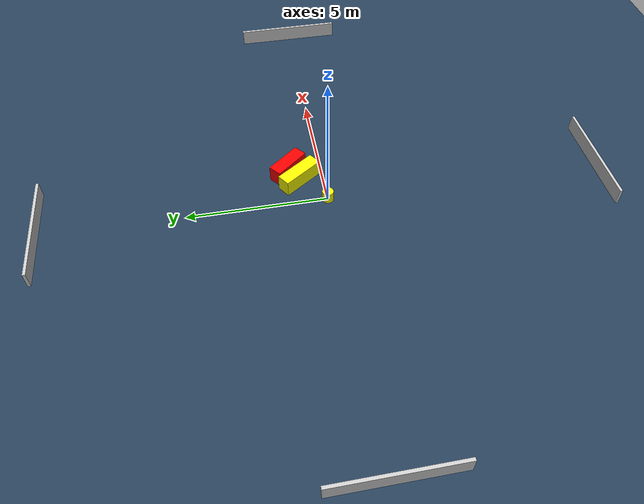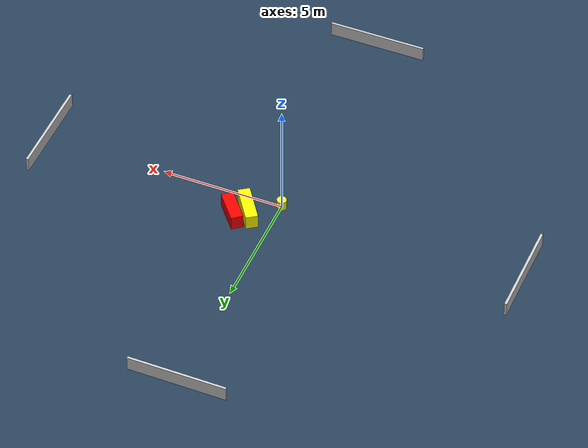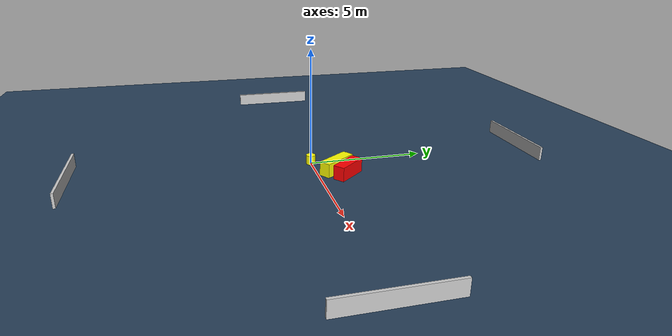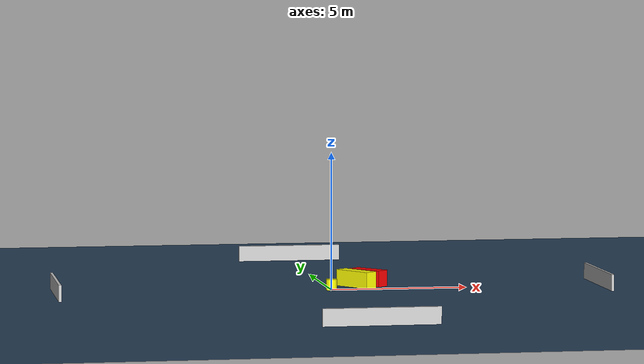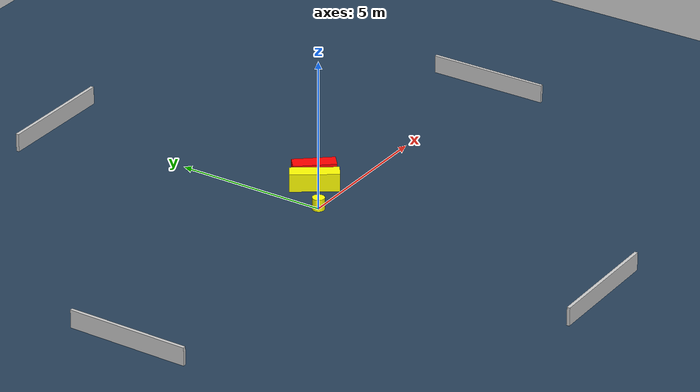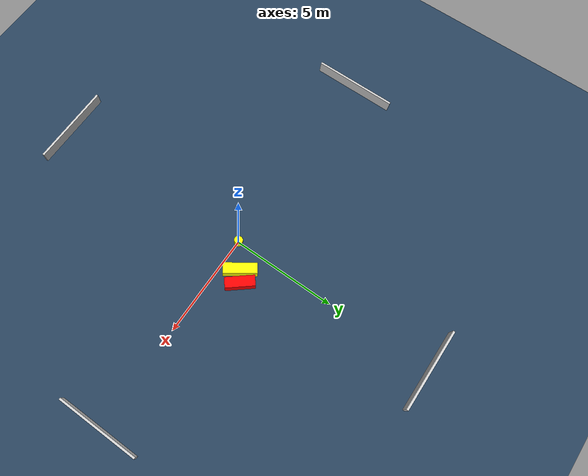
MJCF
<?xml version="1.0" ?>
<mujoco model="generated_environment">
  <option timestep="0.01" integrator="RK4" cone="elliptic"/>
  <default>
    <geom density="1"/>
  </default>
  <asset>
    <texture builtin="gradient" height="3072" name="skybox" rgb1="0.3 0.5 0.7" rgb2="0 0 0" type="skybox" width="512"/>
    <texture builtin="checker" height="300" name="groundplane" rgb1="0.2 0.3 0.4" rgb2="0.1 0.2 0.3" type="2d" width="300"/>
    <material name="groundplane" reflectance="0.2" texrepeat="5 5" texture="groundplane"/>
  </asset>
  <worldbody>
    <light dir="0 0 -1" directional="true" pos="0 0 1.5"/>
    <geom condim="3" friction="0.5 0.005 0.001" material="groundplane" name="floor" pos="0 0 0" size="0 0 0.05" type="plane"/>
    <body name="walls">
      <geom name="wall_1" condim="4" pos="-10.0 0.0 0.3" rgba="0.800000011920929 0.800000011920929 0.800000011920929 1.0" size="0.05 2.0 0.3" type="box"/>
      <geom name="wall_2" condim="4" pos="10.0 0.0 0.3" rgba="0.800000011920929 0.800000011920929 0.800000011920929 1.0" size="0.05 2.0 0.3" type="box"/>
      <geom name="wall_3" condim="4" pos="0.0 -10.0 0.3" rgba="0.800000011920929 0.800000011920929 0.800000011920929 1.0" size="2.0 0.05 0.3" type="box"/>
      <geom name="wall_4" condim="4" pos="0.0 10.0 0.3" rgba="0.800000011920929 0.800000011920929 0.800000011920929 1.0" size="2.0 0.05 0.3" type="box"/>
    </body>
    <body name="robot">
      <joint name="joint_x" type="slide" pos="0 0 0" axis="1 0 0"/>
      <joint name="joint_y" type="slide" pos="0 0 0" axis="0 1 0"/>
      <geom name="robot" type="cylinder" pos="0.0 0.0 0.2" size="0.2 0.2 0.0" mass="5.0" friction="1.0 0.005 0.0001" condim="4" rgba="1.0 1.0 0.0 1.0"/>
    </body>
    <body name="obstacle_1_movable">
      <geom name="obstacle_1_movable" condim="4" pos="1.0706435683459508 0.8521386355942739 0.3" euler="0 0 124.79936449107504" friction="0.0 0.005 0.001" rgba="1.0 1.0 0.0 1.0" size="0.7842997169368457 0.2457987309901567 0.3" type="box" mass="0.1"/>
      <joint type="free"/>
    </body>
    <body name="obstacle_2_static">
      <geom name="obstacle_2_static" condim="4" pos="1.5815096282370533 1.1984086748929679 0.3" euler="0 0 309.9132664943027" friction="0.0 0.005 0.001" rgba="1.0 0.0 0.0 1.0" size="0.6909746513707871 0.24709481343890097 0.3" type="box"/>
    </body>
  </worldbody>
  <actuator>
    <motor name="actuator_x" joint="joint_x" gear="1" ctrlrange="-1 1"/>
    <motor name="actuator_y" joint="joint_y" gear="1" ctrlrange="-1 1"/>
  </actuator>
</mujoco>
